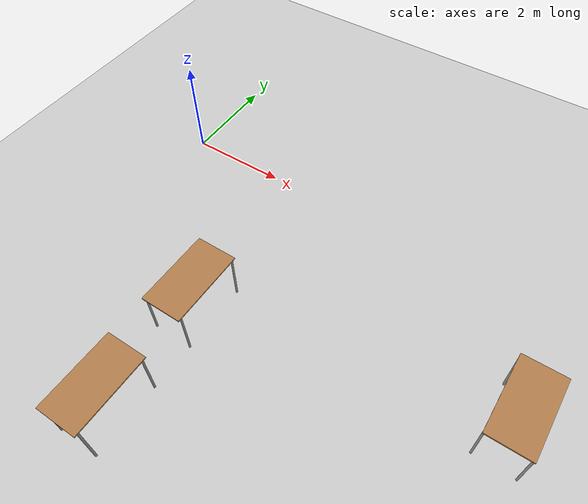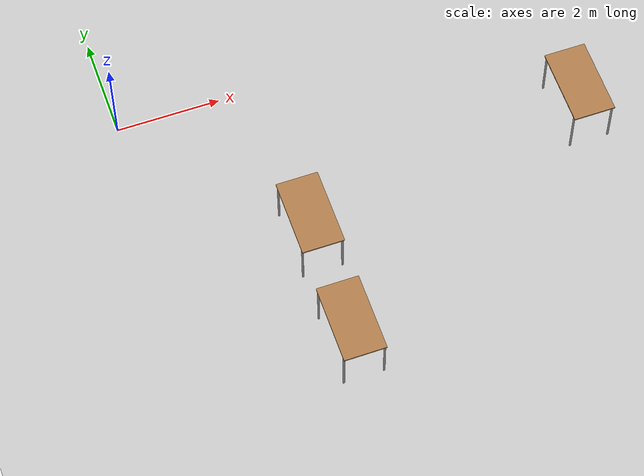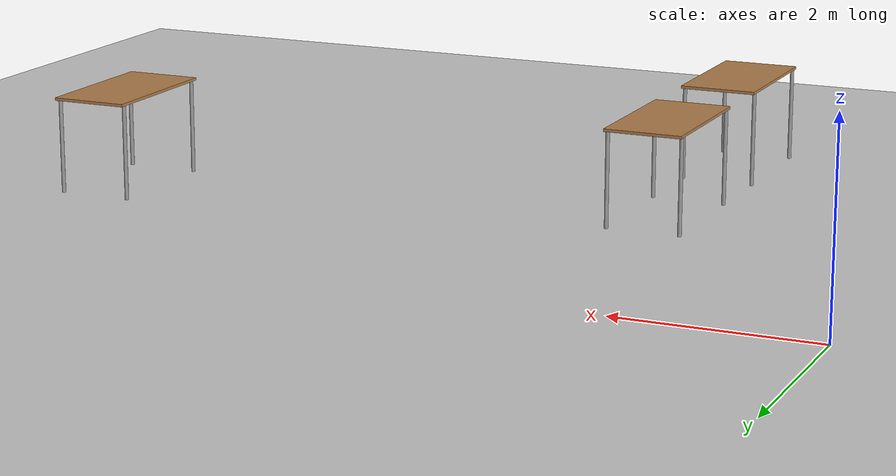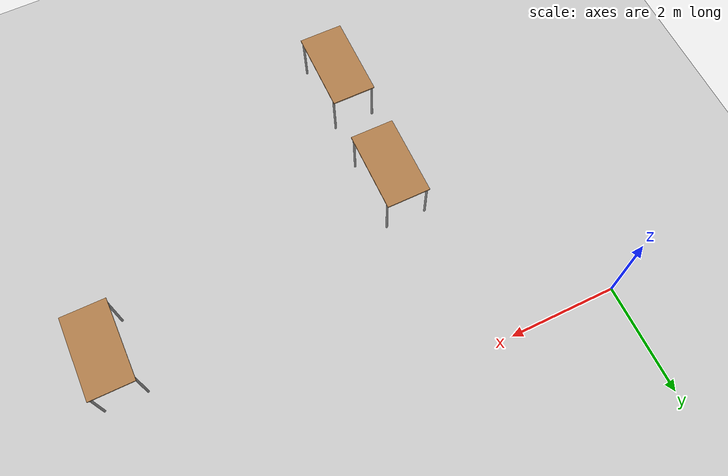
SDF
<sdf version="1.6">
 <world name="default">
  <model name="ground_plane">
   <static>1</static>
   <link name="link">
    <collision name="collision">
     <geometry><plane><normal>0 0 1</normal><size>100 100</size></plane></geometry>
     <surface><friction><ode><mu>100</mu><mu2>50</mu2></ode></friction></surface>
    </collision>
    <visual name="visual">
     <cast_shadows>0</cast_shadows>
     <geometry><plane><normal>0 0 1</normal><size>100 100</size></plane></geometry>
     <material>
      <script><uri>file://media/materials/scripts/gazebo.material</uri><name>Gazebo/Grey</name></script>
     </material>
    </visual>
   </link>
  </model>
  <model name="table_clone_2_clone">
   <static>1</static>
   <link name="link">
    <collision name="surface">
     <pose>0 0 1 0 -0 0</pose>
     <geometry><box><size>1.5 0.8 0.03</size></box></geometry>
     <surface><friction><ode><mu>0.6</mu><mu2>0.6</mu2></ode></friction></surface>
    </collision>
    <visual name="visual1">
     <pose>0 0 1 0 -0 0</pose>
     <geometry><box><size>1.5 0.8 0.03</size></box></geometry>
     <material>
      <script><uri>file://media/materials/scripts/gazebo.material</uri><name>Gazebo/Wood</name></script>
     </material>
    </visual>
    <collision name="front_left_leg">
     <pose>0.68 0.38 0.5 0 -0 0</pose>
     <geometry><cylinder><radius>0.02</radius><length>1</length></cylinder></geometry>
    </collision>
    <visual name="front_left_leg">
     <pose>0.68 0.38 0.5 0 -0 0</pose>
     <geometry><cylinder><radius>0.02</radius><length>1</length></cylinder></geometry>
     <material>
      <script><uri>file://media/materials/scripts/gazebo.material</uri><name>Gazebo/Grey</name></script>
     </material>
    </visual>
    <collision name="front_right_leg">
     <pose>0.68 -0.38 0.5 0 -0 0</pose>
     <geometry><cylinder><radius>0.02</radius><length>1</length></cylinder></geometry>
    </collision>
    <visual name="front_right_leg">
     <pose>0.68 -0.38 0.5 0 -0 0</pose>
     <geometry><cylinder><radius>0.02</radius><length>1</length></cylinder></geometry>
     <material>
      <script><uri>file://media/materials/scripts/gazebo.material</uri><name>Gazebo/Grey</name></script>
     </material>
    </visual>
    <collision name="back_right_leg">
     <pose>-0.68 -0.38 0.5 0 -0 0</pose>
     <geometry><cylinder><radius>0.02</radius><length>1</length></cylinder></geometry>
    </collision>
    <visual name="back_right_leg">
     <pose>-0.68 -0.38 0.5 0 -0 0</pose>
     <geometry><cylinder><radius>0.02</radius><length>1</length></cylinder></geometry>
     <material>
      <script><uri>file://media/materials/scripts/gazebo.material</uri><name>Gazebo/Grey</name></script>
     </material>
    </visual>
    <collision name="back_left_leg">
     <pose>-0.68 0.38 0.5 0 -0 0</pose>
     <geometry><cylinder><radius>0.02</radius><length>1</length></cylinder></geometry>
    </collision>
    <visual name="back_left_leg">
     <pose>-0.68 0.38 0.5 0 -0 0</pose>
     <geometry><cylinder><radius>0.02</radius><length>1</length></cylinder></geometry>
     <material>
      <script><uri>file://media/materials/scripts/gazebo.material</uri><name>Gazebo/Grey</name></script>
     </material>
    </visual>
   </link>
   <pose>2.64427 -5.7064 0 0 -0 1.56891</pose>
  </model>
  <model name="table_clone_2_clone_3">
   <static>1</static>
   <link name="link">
    <collision name="surface">
     <pose>0 0 1 0 -0 0</pose>
     <geometry><box><size>1.5 0.8 0.03</size></box></geometry>
     <surface><friction><ode><mu>0.6</mu><mu2>0.6</mu2></ode></friction></surface>
    </collision>
    <visual name="visual1">
     <pose>0 0 1 0 -0 0</pose>
     <geometry><box><size>1.5 0.8 0.03</size></box></geometry>
     <material>
      <script><uri>file://media/materials/scripts/gazebo.material</uri><name>Gazebo/Wood</name></script>
     </material>
    </visual>
    <collision name="front_left_leg">
     <pose>0.68 0.38 0.5 0 -0 0</pose>
     <geometry><cylinder><radius>0.02</radius><length>1</length></cylinder></geometry>
    </collision>
    <visual name="front_left_leg">
     <pose>0.68 0.38 0.5 0 -0 0</pose>
     <geometry><cylinder><radius>0.02</radius><length>1</length></cylinder></geometry>
     <material>
      <script><uri>file://media/materials/scripts/gazebo.material</uri><name>Gazebo/Grey</name></script>
     </material>
    </visual>
    <collision name="front_right_leg">
     <pose>0.68 -0.38 0.5 0 -0 0</pose>
     <geometry><cylinder><radius>0.02</radius><length>1</length></cylinder></geometry>
    </collision>
    <visual name="front_right_leg">
     <pose>0.68 -0.38 0.5 0 -0 0</pose>
     <geometry><cylinder><radius>0.02</radius><length>1</length></cylinder></geometry>
     <material>
      <script><uri>file://media/materials/scripts/gazebo.material</uri><name>Gazebo/Grey</name></script>
     </material>
    </visual>
    <collision name="back_right_leg">
     <pose>-0.68 -0.38 0.5 0 -0 0</pose>
     <geometry><cylinder><radius>0.02</radius><length>1</length></cylinder></geometry>
    </collision>
    <visual name="back_right_leg">
     <pose>-0.68 -0.38 0.5 0 -0 0</pose>
     <geometry><cylinder><radius>0.02</radius><length>1</length></cylinder></geometry>
     <material>
      <script><uri>file://media/materials/scripts/gazebo.material</uri><name>Gazebo/Grey</name></script>
     </material>
    </visual>
    <collision name="back_left_leg">
     <pose>-0.68 0.38 0.5 0 -0 0</pose>
     <geometry><cylinder><radius>0.02</radius><length>1</length></cylinder></geometry>
    </collision>
    <visual name="back_left_leg">
     <pose>-0.68 0.38 0.5 0 -0 0</pose>
     <geometry><cylinder><radius>0.02</radius><length>1</length></cylinder></geometry>
     <material>
      <script><uri>file://media/materials/scripts/gazebo.material</uri><name>Gazebo/Grey</name></script>
     </material>
    </visual>
   </link>
   <pose>2.65966 -3.44234 0 0 -0 1.56891</pose>
  </model>
  <model name="table_clone_2_clone_3_clone">
   <static>1</static>
   <link name="link">
    <collision name="surface">
     <pose>0 0 1 0 -0 0</pose>
     <geometry><box><size>1.5 0.8 0.03</size></box></geometry>
     <surface><friction><ode><mu>0.6</mu><mu2>0.6</mu2></ode></friction></surface>
    </collision>
    <visual name="visual1">
     <pose>0 0 1 0 -0 0</pose>
     <geometry><box><size>1.5 0.8 0.03</size></box></geometry>
     <material>
      <script><uri>file://media/materials/scripts/gazebo.material</uri><name>Gazebo/Wood</name></script>
     </material>
    </visual>
    <collision name="front_left_leg">
     <pose>0.68 0.38 0.5 0 -0 0</pose>
     <geometry><cylinder><radius>0.02</radius><length>1</length></cylinder></geometry>
    </collision>
    <visual name="front_left_leg">
     <pose>0.68 0.38 0.5 0 -0 0</pose>
     <geometry><cylinder><radius>0.02</radius><length>1</length></cylinder></geometry>
     <material>
      <script><uri>file://media/materials/scripts/gazebo.material</uri><name>Gazebo/Grey</name></script>
     </material>
    </visual>
    <collision name="front_right_leg">
     <pose>0.68 -0.38 0.5 0 -0 0</pose>
     <geometry><cylinder><radius>0.02</radius><length>1</length></cylinder></geometry>
    </collision>
    <visual name="front_right_leg">
     <pose>0.68 -0.38 0.5 0 -0 0</pose>
     <geometry><cylinder><radius>0.02</radius><length>1</length></cylinder></geometry>
     <material>
      <script><uri>file://media/materials/scripts/gazebo.material</uri><name>Gazebo/Grey</name></script>
     </material>
    </visual>
    <collision name="back_right_leg">
     <pose>-0.68 -0.38 0.5 0 -0 0</pose>
     <geometry><cylinder><radius>0.02</radius><length>1</length></cylinder></geometry>
    </collision>
    <visual name="back_right_leg">
     <pose>-0.68 -0.38 0.5 0 -0 0</pose>
     <geometry><cylinder><radius>0.02</radius><length>1</length></cylinder></geometry>
     <material>
      <script><uri>file://media/materials/scripts/gazebo.material</uri><name>Gazebo/Grey</name></script>
     </material>
    </visual>
    <collision name="back_left_leg">
     <pose>-0.68 0.38 0.5 0 -0 0</pose>
     <geometry><cylinder><radius>0.02</radius><length>1</length></cylinder></geometry>
    </collision>
    <visual name="back_left_leg">
     <pose>-0.68 0.38 0.5 0 -0 0</pose>
     <geometry><cylinder><radius>0.02</radius><length>1</length></cylinder></geometry>
     <material>
      <script><uri>file://media/materials/scripts/gazebo.material</uri><name>Gazebo/Grey</name></script>
     </material>
    </visual>
   </link>
   <pose>8.30254 -2.4653 0 0 -0 1.56891</pose>
  </model>
 </world>
</sdf>
